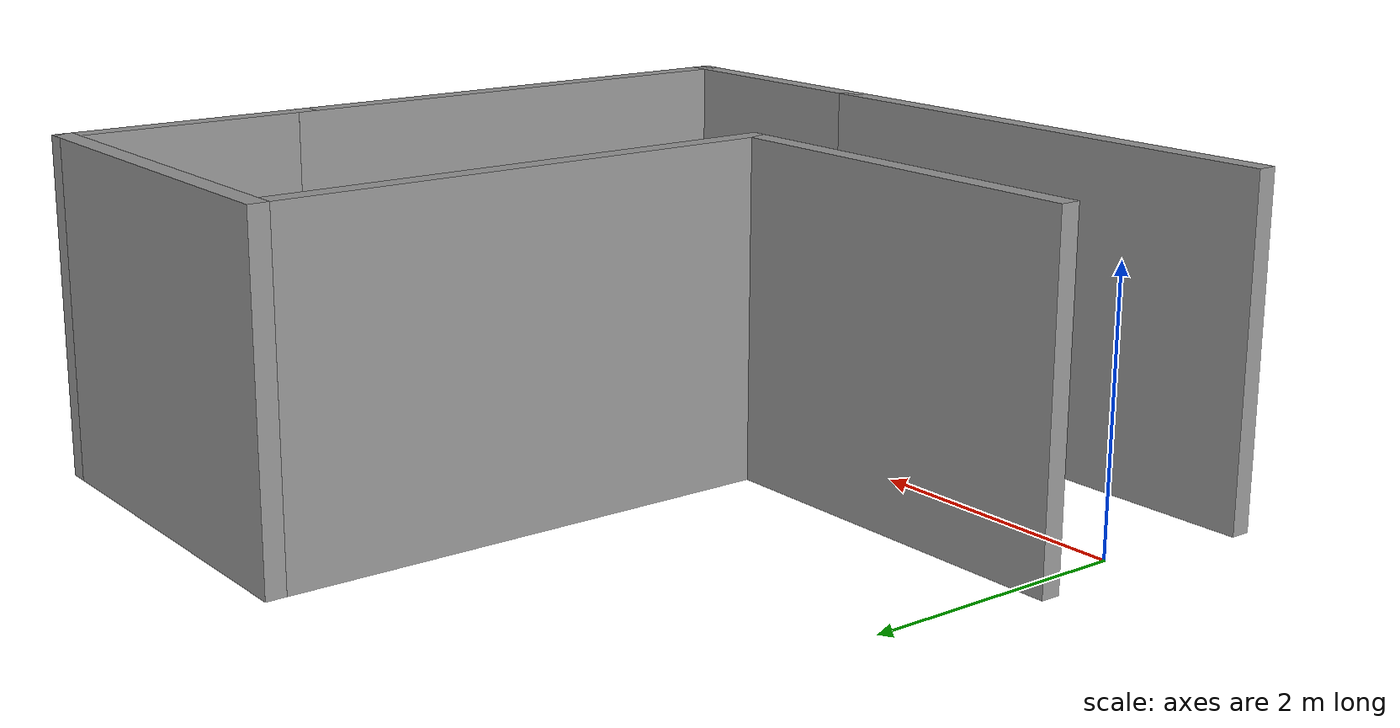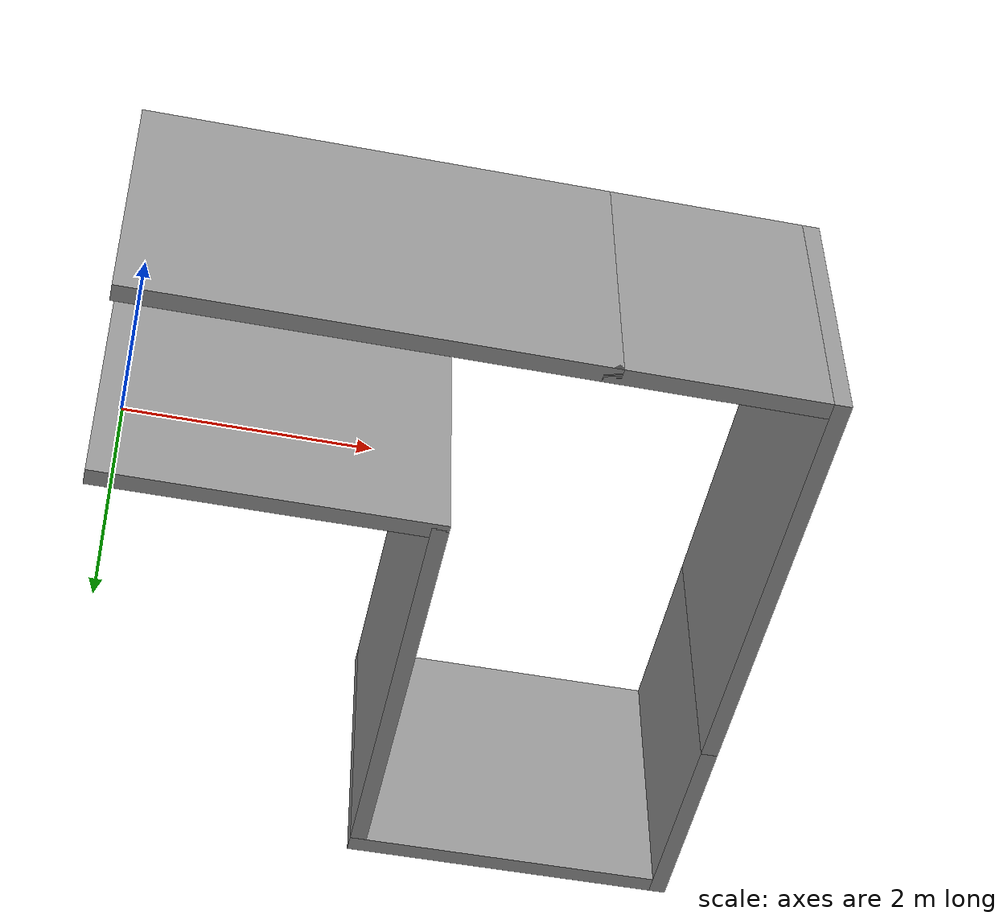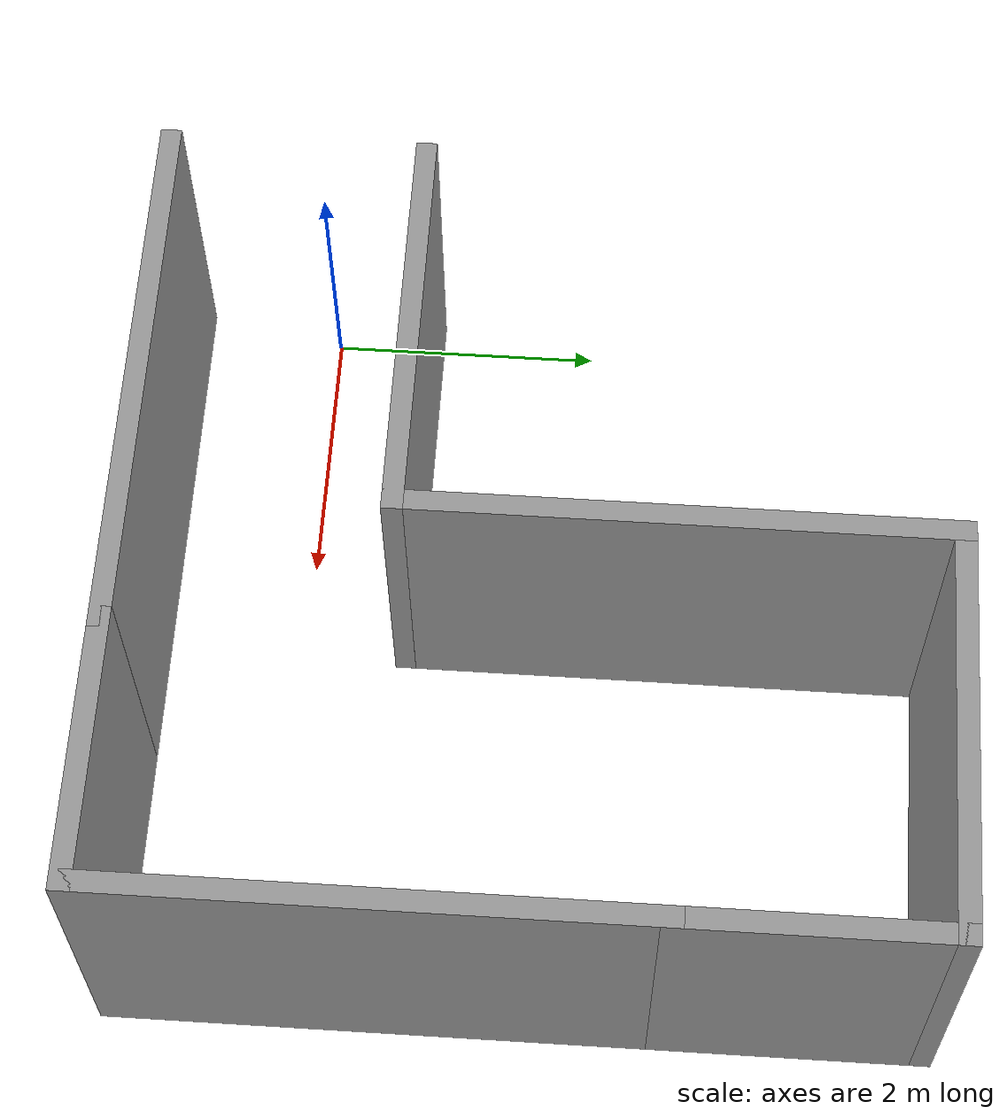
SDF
<?xml version='1.0'?>
<sdf version='1.7'>
  <model name='mapa1'>
    <pose>2.70813 1.74875 0 0 -0 0</pose>
    <link name='Wall_11'>
      <collision name='Wall_11_Collision'>
        <geometry>
          <box>
            <size>4 0.15 2.5</size>
          </box>
        </geometry>
        <pose>0 0 1.25 0 -0 0</pose>
      </collision>
      <visual name='Wall_11_Visual'>
        <pose>0 0 1.25 0 -0 0</pose>
        <geometry>
          <box>
            <size>4 0.15 2.5</size>
          </box>
        </geometry>
        <material>
          <script>
            <uri>file://media/materials/scripts/gazebo.material</uri>
            <name>Gazebo/Grey</name>
          </script>
          <ambient>1 1 1 1</ambient>
        </material>
        <meta>
          <layer>0</layer>
        </meta>
      </visual>
      <pose>2.85 -0.925 0 0 -0 1.5708</pose>
    </link>
    <link name='Wall_14'>
      <collision name='Wall_14_Collision'>
        <geometry>
          <box>
            <size>2 0.15 2.5</size>
          </box>
        </geometry>
        <pose>0 0 1.25 0 -0 0</pose>
      </collision>
      <visual name='Wall_14_Visual'>
        <pose>0 0 1.25 0 -0 0</pose>
        <geometry>
          <box>
            <size>2 0.15 2.5</size>
          </box>
        </geometry>
        <material>
          <script>
            <uri>file://media/materials/scripts/gazebo.material</uri>
            <name>Gazebo/Grey</name>
          </script>
          <ambient>1 1 1 1</ambient>
        </material>
        <meta>
          <layer>0</layer>
        </meta>
      </visual>
      <pose>2.85 1.925 0 0 -0 1.5708</pose>
    </link>
    <link name='Wall_15'>
      <collision name='Wall_15_Collision'>
        <geometry>
          <box>
            <size>3 0.15 2.5</size>
          </box>
        </geometry>
        <pose>0 0 1.25 0 -0 0</pose>
      </collision>
      <visual name='Wall_15_Visual'>
        <pose>0 0 1.25 0 -0 0</pose>
        <geometry>
          <box>
            <size>3 0.15 2.5</size>
          </box>
        </geometry>
        <material>
          <script>
            <uri>file://media/materials/scripts/gazebo.material</uri>
            <name>Gazebo/Grey</name>
          </script>
          <ambient>1 1 1 1</ambient>
        </material>
        <meta>
          <layer>0</layer>
        </meta>
      </visual>
      <pose>1.425 2.85 0 0 -0 3.14159</pose>
    </link>
    <link name='Wall_16'>
      <collision name='Wall_16_Collision'>
        <geometry>
          <box>
            <size>4 0.15 2.5</size>
          </box>
        </geometry>
        <pose>0 0 1.25 0 -0 0</pose>
      </collision>
      <visual name='Wall_16_Visual'>
        <pose>0 0 1.25 0 -0 0</pose>
        <geometry>
          <box>
            <size>4 0.15 2.5</size>
          </box>
        </geometry>
        <material>
          <script>
            <uri>file://media/materials/scripts/gazebo.material</uri>
            <name>Gazebo/Grey</name>
          </script>
          <ambient>1 1 1 1</ambient>
        </material>
        <meta>
          <layer>0</layer>
        </meta>
      </visual>
      <pose>-0 0.925 0 0 -0 -1.5708</pose>
    </link>
    <link name='Wall_17'>
      <collision name='Wall_17_Collision'>
        <geometry>
          <box>
            <size>3 0.15 2.5</size>
          </box>
        </geometry>
        <pose>0 0 1.25 0 -0 0</pose>
      </collision>
      <visual name='Wall_17_Visual'>
        <pose>0 0 1.25 0 -0 0</pose>
        <geometry>
          <box>
            <size>3 0.15 2.5</size>
          </box>
        </geometry>
        <material>
          <script>
            <uri>file://media/materials/scripts/gazebo.material</uri>
            <name>Gazebo/Grey</name>
          </script>
          <ambient>1 1 1 1</ambient>
        </material>
        <meta>
          <layer>0</layer>
        </meta>
      </visual>
      <pose>-1.425 -1 0 0 -0 3.14159</pose>
    </link>
    <link name='Wall_8'>
      <collision name='Wall_8_Collision'>
        <geometry>
          <box>
            <size>4 0.15 2.5</size>
          </box>
        </geometry>
        <pose>0 0 1.25 0 -0 0</pose>
      </collision>
      <visual name='Wall_8_Visual'>
        <pose>0 0 1.25 0 -0 0</pose>
        <geometry>
          <box>
            <size>4 0.15 2.5</size>
          </box>
        </geometry>
        <material>
          <script>
            <uri>file://media/materials/scripts/gazebo.material</uri>
            <name>Gazebo/Grey</name>
          </script>
          <ambient>1 1 1 1</ambient>
        </material>
        <meta>
          <layer>0</layer>
        </meta>
      </visual>
      <pose>-0.925 -2.85 0 0 -0 0</pose>
    </link>
    <link name='Wall_9'>
      <collision name='Wall_9_Collision'>
        <geometry>
          <box>
            <size>2 0.15 2.5</size>
          </box>
        </geometry>
        <pose>0 0 1.25 0 -0 0</pose>
      </collision>
      <visual name='Wall_9_Visual'>
        <pose>0 0 1.25 0 -0 0</pose>
        <geometry>
          <box>
            <size>2 0.15 2.5</size>
          </box>
        </geometry>
        <material>
          <script>
            <uri>file://media/materials/scripts/gazebo.material</uri>
            <name>Gazebo/Grey</name>
          </script>
          <ambient>1 1 1 1</ambient>
        </material>
        <meta>
          <layer>0</layer>
        </meta>
      </visual>
      <pose>1.925 -2.85 0 0 -0 0</pose>
    </link>
    <static>1</static>
  </model>
</sdf>
